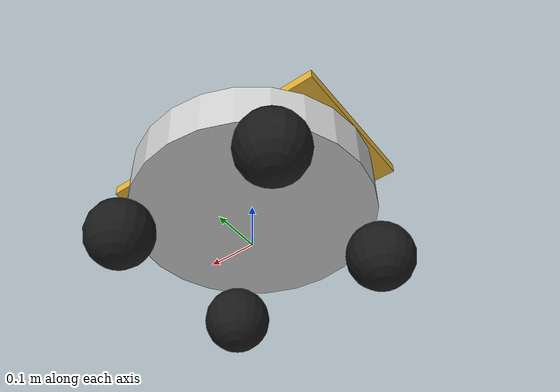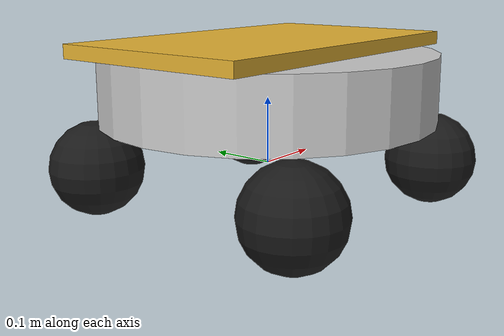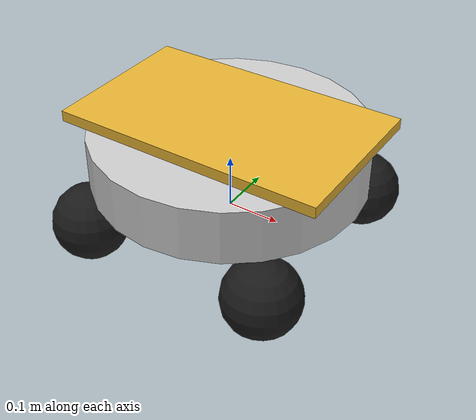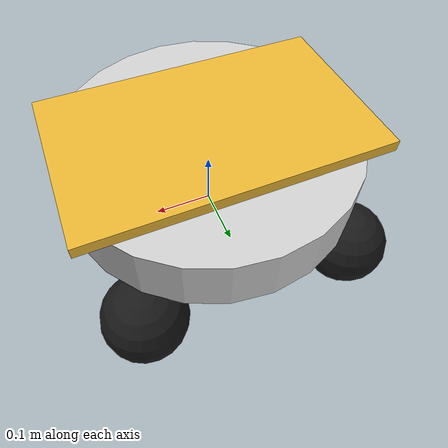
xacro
<?xml version="1.0"?>
<robot xmlns:xacro="http://www.ros.org/wiki/xacro" name="robot_waiter">

  <!-- Material macros -->
  <xacro:macro name="material_def" params="name r g b a">
    <material name="${name}">
      <color rgba="${r} ${g} ${b} ${a}"/>
    </material>
  </xacro:macro>

  <!-- Materials -->
  <xacro:material_def name="body_mat" r="0.8" g="0.8" b="0.8" a="1.0"/>
  <xacro:material_def name="wheel_mat" r="0.1" g="0.1" b="0.1" a="1.0"/>
  <xacro:material_def name="tray_mat" r="0.9" g="0.7" b="0.2" a="1.0"/>

  <!-- Parameters -->
  <xacro:property name="wheel_radius" value="0.07"/>
  <xacro:property name="base_radius" value="0.25"/>
  <xacro:property name="base_height" value="0.1"/>
  <xacro:property name="base_z" value="0.05"/> <!-- ABBASSATO -->
  <xacro:property name="wheel_offset" value="0.18"/>
  <xacro:property name="tray_length" value="0.5"/>
  <xacro:property name="tray_width" value="0.3"/>
  <xacro:property name="tray_thickness" value="0.02"/>

  <!-- Gazebo plugins -->
  <gazebo>
    <plugin name="gazebo_ros_control" filename="libgazebo_ros_control.so">
      <robotNamespace>/robot_waiter</robotNamespace>
    </plugin>
  </gazebo>

  <!-- Base -->
  <link name="base_link">
    <visual>
      <origin xyz="0 0 ${wheel_radius + base_z}" rpy="0 0 0"/>
      <geometry>
        <cylinder radius="${base_radius}" length="${base_height}"/>
      </geometry>
      <material name="body_mat"/>
    </visual>
    <collision>
      <origin xyz="0 0 ${base_z}" rpy="0 0 0"/>
      <geometry>
        <cylinder radius="${base_radius}" length="${base_height}"/>
      </geometry>
    </collision>
    <inertial>
      <mass value="5.0"/>
      <origin xyz="0 0 ${base_z}" rpy="0 0 0"/>
      <inertia ixx="0.1" ixy="0" ixz="0" iyy="0.1" iyz="0" izz="0.1"/>
    </inertial>
  </link>
  <gazebo reference="base_link">
    <material>Gazebo/Grey</material>
  </gazebo>

  <!-- Macro per ruote -->
  <xacro:macro name="spherical_wheel" params="name x y">
    <link name="${name}">
      <visual>
        <origin xyz="0 0 0" rpy="0 0 0"/>
        <geometry>
          <sphere radius="${wheel_radius}"/>
        </geometry>
        <material name="wheel_mat"/>
      </visual>
      <collision>
        <origin xyz="0 0 0" rpy="0 0 0"/>
        <geometry>
          <sphere radius="${wheel_radius}"/>
        </geometry>
      </collision>
      <inertial>
        <mass value="1.0"/>
        <inertia ixx="0.01" ixy="0" ixz="0" iyy="0.01" iyz="0" izz="0.01"/>
      </inertial>
    </link>
    <joint name="base_to_${name}" type="fixed">
      <parent link="base_link"/>
      <child link="${name}"/>
      <origin xyz="${x} ${y} 0.0" rpy="0 0 0"/>
    </joint>
    <gazebo reference="${name}">
      <material>Gazebo/Black</material>
    </gazebo>
  </xacro:macro>

  <!-- Quattro ruote -->
  <xacro:spherical_wheel name="wheel_fl_link" x="${wheel_offset}" y="${wheel_offset}"/>
  <xacro:spherical_wheel name="wheel_fr_link" x="${wheel_offset}" y="-${wheel_offset}"/>
  <xacro:spherical_wheel name="wheel_rl_link" x="-${wheel_offset}" y="${wheel_offset}"/>
  <xacro:spherical_wheel name="wheel_rr_link" x="-${wheel_offset}" y="-${wheel_offset}"/>

  <!-- Vassoio -->
  <link name="tray_link">
    <visual>
      <origin xyz="0 0 ${wheel_radius + base_z + base_height/2 + tray_thickness/2}" rpy="0 0 0"/>
      <geometry>
        <box size="${tray_length} ${tray_width} ${tray_thickness}"/>
      </geometry>
      <material name="tray_mat"/>
    </visual>
    <collision>
      <origin xyz="0 0 ${wheel_radius + base_z + base_height/2 + tray_thickness/2}" rpy="0 0 0"/>
      <geometry>
        <box size="${tray_length} ${tray_width} ${tray_thickness}"/>
      </geometry>
    </collision>
    <inertial>
      <mass value="2.0"/>
      <origin xyz="0 0 0" rpy="0 0 0"/>
      <inertia ixx="0.02" ixy="0" ixz="0" iyy="0.02" iyz="0" izz="0.02"/>
    </inertial>
  </link>
  <joint name="base_to_tray" type="fixed">
    <parent link="base_link"/>
    <child link="tray_link"/>
    <origin xyz="0 0 0" rpy="0 0 0"/>
  </joint>
  <gazebo reference="tray_link">
    <material>Gazebo/Gold</material>
  </gazebo>

</robot>
